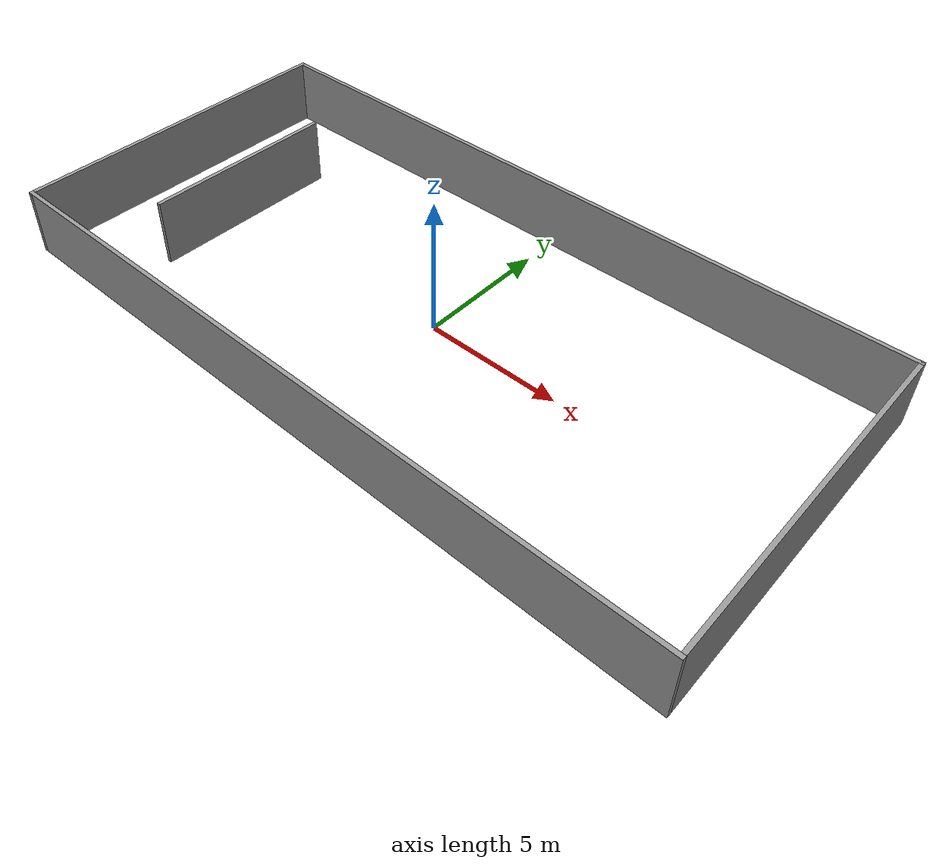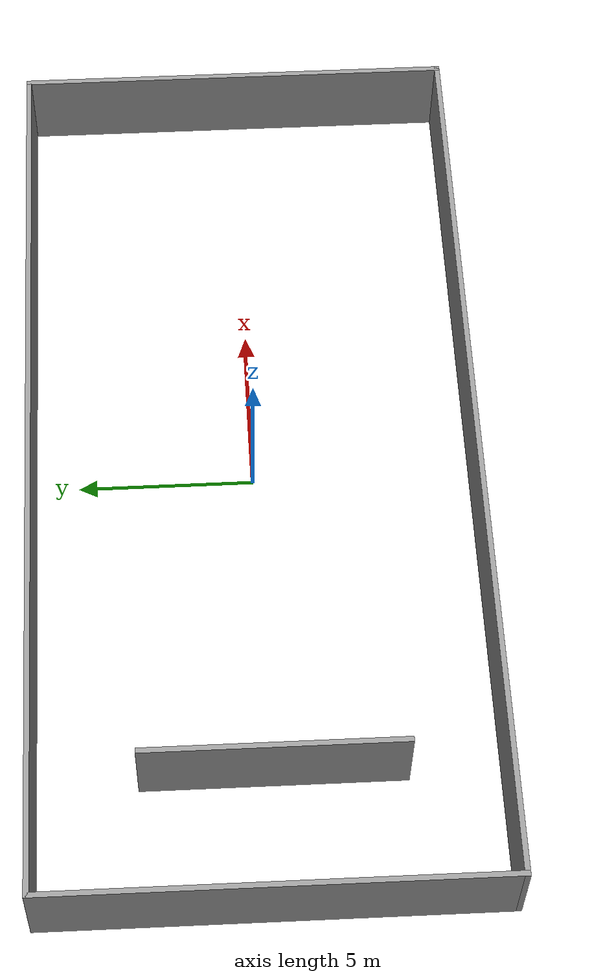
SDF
<?xml version='1.0'?>
<sdf version='1.7'>
  <model name='maze'>
    <link name='Wall_13'>
      <pose>0 6.3 0 0 -0 0</pose>
      <self_collide>0</self_collide>
      <enable_wind>0</enable_wind>
      <kinematic>0</kinematic>
      <visual name='Wall_13_Visual'>
        <pose>0 0 1.25 0 -0 0</pose>
        <geometry>
          <box>
            <size>26.5 0.15 2.5</size>
          </box>
        </geometry>
        <material>
          <script>
            <uri>file://media/materials/scripts/gazebo.material</uri>
            <name>Gazebo/Grey</name>
          </script>
          <ambient>1 1 1 1</ambient>
          <shader type='pixel'/>
        </material>
        <meta>
          <layer>0</layer>
        </meta>
        <transparency>0</transparency>
        <cast_shadows>1</cast_shadows>
      </visual>
      <collision name='Wall_13_Collision'>
        <laser_retro>0</laser_retro>
        <max_contacts>10</max_contacts>
        <pose>0 0 1.25 0 -0 0</pose>
        <geometry>
          <box>
            <size>26.5 0.15 2.5</size>
          </box>
        </geometry>
        <surface>
          <friction>
            <ode>
              <mu>1</mu>
              <mu2>1</mu2>
              <fdir1>0 0 0</fdir1>
              <slip1>0</slip1>
              <slip2>0</slip2>
            </ode>
            <torsional>
              <coefficient>1</coefficient>
              <patch_radius>0</patch_radius>
              <surface_radius>0</surface_radius>
              <use_patch_radius>1</use_patch_radius>
              <ode>
                <slip>0</slip>
              </ode>
            </torsional>
          </friction>
          <bounce>
            <restitution_coefficient>0</restitution_coefficient>
            <threshold>1e+06</threshold>
          </bounce>
          <contact>
            <collide_without_contact>0</collide_without_contact>
            <collide_without_contact_bitmask>1</collide_without_contact_bitmask>
            <collide_bitmask>1</collide_bitmask>
            <ode>
              <soft_cfm>0</soft_cfm>
              <soft_erp>0.2</soft_erp>
              <kp>1e+13</kp>
              <kd>1</kd>
              <max_vel>0.01</max_vel>
              <min_depth>0</min_depth>
            </ode>
            <bullet>
              <split_impulse>1</split_impulse>
              <split_impulse_penetration_threshold>-0.01</split_impulse_penetration_threshold>
              <soft_cfm>0</soft_cfm>
              <soft_erp>0.2</soft_erp>
              <kp>1e+13</kp>
              <kd>1</kd>
            </bullet>
          </contact>
        </surface>
      </collision>
    </link>
    <link name='Wall_14'>
      <pose>13.175 0 0 0 0 -1.5708</pose>
      <self_collide>0</self_collide>
      <enable_wind>0</enable_wind>
      <kinematic>0</kinematic>
      <visual name='Wall_14_Visual'>
        <pose>0 0 1.25 0 -0 0</pose>
        <geometry>
          <box>
            <size>12.75 0.15 2.5</size>
          </box>
        </geometry>
        <material>
          <script>
            <uri>file://media/materials/scripts/gazebo.material</uri>
            <name>Gazebo/Grey</name>
          </script>
          <ambient>1 1 1 1</ambient>
          <shader type='pixel'/>
        </material>
        <meta>
          <layer>0</layer>
        </meta>
        <transparency>0</transparency>
        <cast_shadows>1</cast_shadows>
      </visual>
      <collision name='Wall_14_Collision'>
        <laser_retro>0</laser_retro>
        <max_contacts>10</max_contacts>
        <pose>0 0 1.25 0 -0 0</pose>
        <geometry>
          <box>
            <size>12.75 0.15 2.5</size>
          </box>
        </geometry>
        <surface>
          <friction>
            <ode>
              <mu>1</mu>
              <mu2>1</mu2>
              <fdir1>0 0 0</fdir1>
              <slip1>0</slip1>
              <slip2>0</slip2>
            </ode>
            <torsional>
              <coefficient>1</coefficient>
              <patch_radius>0</patch_radius>
              <surface_radius>0</surface_radius>
              <use_patch_radius>1</use_patch_radius>
              <ode>
                <slip>0</slip>
              </ode>
            </torsional>
          </friction>
          <bounce>
            <restitution_coefficient>0</restitution_coefficient>
            <threshold>1e+06</threshold>
          </bounce>
          <contact>
            <collide_without_contact>0</collide_without_contact>
            <collide_without_contact_bitmask>1</collide_without_contact_bitmask>
            <collide_bitmask>1</collide_bitmask>
            <ode>
              <soft_cfm>0</soft_cfm>
              <soft_erp>0.2</soft_erp>
              <kp>1e+13</kp>
              <kd>1</kd>
              <max_vel>0.01</max_vel>
              <min_depth>0</min_depth>
            </ode>
            <bullet>
              <split_impulse>1</split_impulse>
              <split_impulse_penetration_threshold>-0.01</split_impulse_penetration_threshold>
              <soft_cfm>0</soft_cfm>
              <soft_erp>0.2</soft_erp>
              <kp>1e+13</kp>
              <kd>1</kd>
            </bullet>
          </contact>
        </surface>
      </collision>
    </link>
    <link name='Wall_15'>
      <pose>0 -6.3 0 0 -0 3.14159</pose>
      <self_collide>0</self_collide>
      <enable_wind>0</enable_wind>
      <kinematic>0</kinematic>
      <visual name='Wall_15_Visual'>
        <pose>0 0 1.25 0 -0 0</pose>
        <geometry>
          <box>
            <size>26.5 0.15 2.5</size>
          </box>
        </geometry>
        <material>
          <script>
            <uri>file://media/materials/scripts/gazebo.material</uri>
            <name>Gazebo/Grey</name>
          </script>
          <ambient>1 1 1 1</ambient>
          <shader type='pixel'/>
        </material>
        <meta>
          <layer>0</layer>
        </meta>
        <transparency>0</transparency>
        <cast_shadows>1</cast_shadows>
      </visual>
      <collision name='Wall_15_Collision'>
        <laser_retro>0</laser_retro>
        <max_contacts>10</max_contacts>
        <pose>0 0 1.25 0 -0 0</pose>
        <geometry>
          <box>
            <size>26.5 0.15 2.5</size>
          </box>
        </geometry>
        <surface>
          <friction>
            <ode>
              <mu>1</mu>
              <mu2>1</mu2>
              <fdir1>0 0 0</fdir1>
              <slip1>0</slip1>
              <slip2>0</slip2>
            </ode>
            <torsional>
              <coefficient>1</coefficient>
              <patch_radius>0</patch_radius>
              <surface_radius>0</surface_radius>
              <use_patch_radius>1</use_patch_radius>
              <ode>
                <slip>0</slip>
              </ode>
            </torsional>
          </friction>
          <bounce>
            <restitution_coefficient>0</restitution_coefficient>
            <threshold>1e+06</threshold>
          </bounce>
          <contact>
            <collide_without_contact>0</collide_without_contact>
            <collide_without_contact_bitmask>1</collide_without_contact_bitmask>
            <collide_bitmask>1</collide_bitmask>
            <ode>
              <soft_cfm>0</soft_cfm>
              <soft_erp>0.2</soft_erp>
              <kp>1e+13</kp>
              <kd>1</kd>
              <max_vel>0.01</max_vel>
              <min_depth>0</min_depth>
            </ode>
            <bullet>
              <split_impulse>1</split_impulse>
              <split_impulse_penetration_threshold>-0.01</split_impulse_penetration_threshold>
              <soft_cfm>0</soft_cfm>
              <soft_erp>0.2</soft_erp>
              <kp>1e+13</kp>
              <kd>1</kd>
            </bullet>
          </contact>
        </surface>
      </collision>
    </link>
    <link name='Wall_16'>
      <pose>-13.175 0 0 0 -0 1.5708</pose>
      <self_collide>0</self_collide>
      <enable_wind>0</enable_wind>
      <kinematic>0</kinematic>
      <visual name='Wall_16_Visual'>
        <pose>0 0 1.25 0 -0 0</pose>
        <geometry>
          <box>
            <size>12.75 0.15 2.5</size>
          </box>
        </geometry>
        <material>
          <script>
            <uri>file://media/materials/scripts/gazebo.material</uri>
            <name>Gazebo/Grey</name>
          </script>
          <ambient>1 1 1 1</ambient>
          <shader type='pixel'/>
        </material>
        <meta>
          <layer>0</layer>
        </meta>
        <transparency>0</transparency>
        <cast_shadows>1</cast_shadows>
      </visual>
      <collision name='Wall_16_Collision'>
        <laser_retro>0</laser_retro>
        <max_contacts>10</max_contacts>
        <pose>0 0 1.25 0 -0 0</pose>
        <geometry>
          <box>
            <size>12.75 0.15 2.5</size>
          </box>
        </geometry>
        <surface>
          <friction>
            <ode>
              <mu>1</mu>
              <mu2>1</mu2>
              <fdir1>0 0 0</fdir1>
              <slip1>0</slip1>
              <slip2>0</slip2>
            </ode>
            <torsional>
              <coefficient>1</coefficient>
              <patch_radius>0</patch_radius>
              <surface_radius>0</surface_radius>
              <use_patch_radius>1</use_patch_radius>
              <ode>
                <slip>0</slip>
              </ode>
            </torsional>
          </friction>
          <bounce>
            <restitution_coefficient>0</restitution_coefficient>
            <threshold>1e+06</threshold>
          </bounce>
          <contact>
            <collide_without_contact>0</collide_without_contact>
            <collide_without_contact_bitmask>1</collide_without_contact_bitmask>
            <collide_bitmask>1</collide_bitmask>
            <ode>
              <soft_cfm>0</soft_cfm>
              <soft_erp>0.2</soft_erp>
              <kp>1e+13</kp>
              <kd>1</kd>
              <max_vel>0.01</max_vel>
              <min_depth>0</min_depth>
            </ode>
            <bullet>
              <split_impulse>1</split_impulse>
              <split_impulse_penetration_threshold>-0.01</split_impulse_penetration_threshold>
              <soft_cfm>0</soft_cfm>
              <soft_erp>0.2</soft_erp>
              <kp>1e+13</kp>
              <kd>1</kd>
            </bullet>
          </contact>
        </surface>
      </collision>
    </link>
    <link name='Wall_18'>
      <pose>-9.375 -0.13 0 0 0 -1.5708</pose>
      <self_collide>0</self_collide>
      <enable_wind>0</enable_wind>
      <kinematic>0</kinematic>
      <visual name='Wall_18_Visual'>
        <pose>0 0 1.25 0 -0 0</pose>
        <geometry>
          <box>
            <size>7.25 0.15 2.5</size>
          </box>
        </geometry>
        <material>
          <script>
            <uri>file://media/materials/scripts/gazebo.material</uri>
            <name>Gazebo/Grey</name>
          </script>
          <ambient>1 1 1 1</ambient>
          <shader type='pixel'/>
        </material>
        <meta>
          <layer>0</layer>
        </meta>
        <transparency>0</transparency>
        <cast_shadows>1</cast_shadows>
      </visual>
      <collision name='Wall_18_Collision'>
        <laser_retro>0</laser_retro>
        <max_contacts>10</max_contacts>
        <pose>0 0 1.25 0 -0 0</pose>
        <geometry>
          <box>
            <size>7.25 0.15 2.5</size>
          </box>
        </geometry>
        <surface>
          <friction>
            <ode>
              <mu>1</mu>
              <mu2>1</mu2>
              <fdir1>0 0 0</fdir1>
              <slip1>0</slip1>
              <slip2>0</slip2>
            </ode>
            <torsional>
              <coefficient>1</coefficient>
              <patch_radius>0</patch_radius>
              <surface_radius>0</surface_radius>
              <use_patch_radius>1</use_patch_radius>
              <ode>
                <slip>0</slip>
              </ode>
            </torsional>
          </friction>
          <bounce>
            <restitution_coefficient>0</restitution_coefficient>
            <threshold>1e+06</threshold>
          </bounce>
          <contact>
            <collide_without_contact>0</collide_without_contact>
            <collide_without_contact_bitmask>1</collide_without_contact_bitmask>
            <collide_bitmask>1</collide_bitmask>
            <ode>
              <soft_cfm>0</soft_cfm>
              <soft_erp>0.2</soft_erp>
              <kp>1e+13</kp>
              <kd>1</kd>
              <max_vel>0.01</max_vel>
              <min_depth>0</min_depth>
            </ode>
            <bullet>
              <split_impulse>1</split_impulse>
              <split_impulse_penetration_threshold>-0.01</split_impulse_penetration_threshold>
              <soft_cfm>0</soft_cfm>
              <soft_erp>0.2</soft_erp>
              <kp>1e+13</kp>
              <kd>1</kd>
            </bullet>
          </contact>
        </surface>
      </collision>
    </link>
    <static>1</static>
    <allow_auto_disable>1</allow_auto_disable>
  </model>
</sdf>
